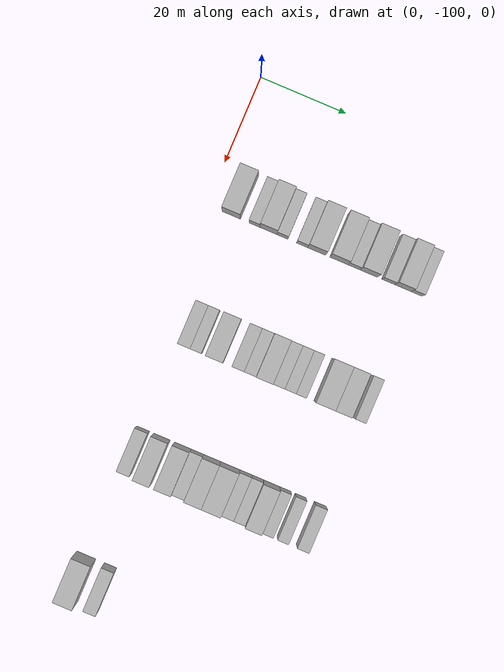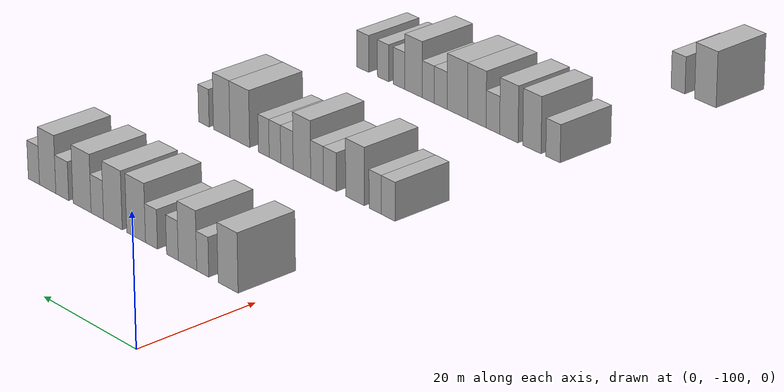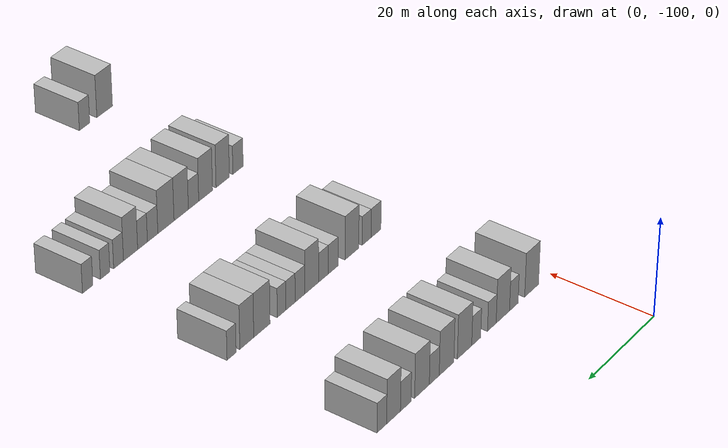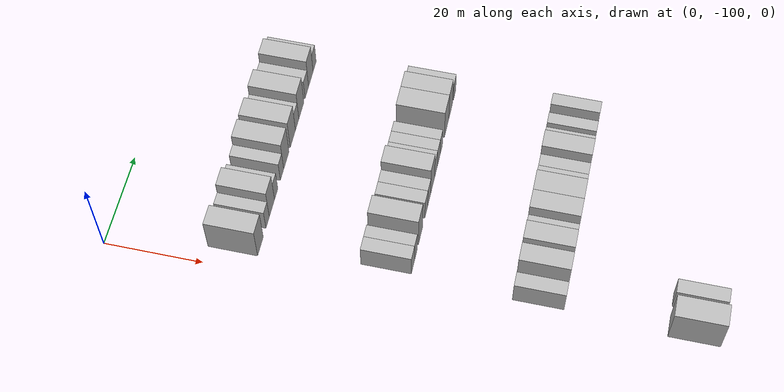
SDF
<sdf version="1.6">
 <world name="default">
  <model name="building_91">
   <static>1</static>
   <pose>25.0000 -94.2348 0 0.000000 0.000000 0.000000</pose>
   <link name="link">
    <pose>0 0 4.50 0 0 0</pose>
    <collision name="collision"><geometry><box><size>10.0000 4.2460 9.0000</size></box></geometry></collision>
    <visual name="visual">
     <cast_shadows>0</cast_shadows>
     <geometry><box><size>10.0000 4.2460 9.0000</size></box></geometry>
     <material>
      <script>
       <uri>model://HANNAS_wall/materials/scripts</uri>
       <uri>model://HANNAS_wall/materials/textures</uri>
       <name>vrc/HANNAS_wall</name>
      </script>
     </material>
    </visual>
   </link>
  </model>
  <model name="building_92">
   <static>1</static>
   <pose>25.0000 -88.8153 0 0.000000 0.000000 0.000000</pose>
   <link name="link">
    <pose>0 0 3.00 0 0 0</pose>
    <collision name="collision"><geometry><box><size>10.0000 2.5929 6.0000</size></box></geometry></collision>
    <visual name="visual">
     <cast_shadows>0</cast_shadows>
     <geometry><box><size>10.0000 2.5929 6.0000</size></box></geometry>
     <material>
      <script>
       <uri>model://HANNAS_wall/materials/scripts</uri>
       <uri>model://HANNAS_wall/materials/textures</uri>
       <name>vrc/HANNAS_wall</name>
      </script>
     </material>
    </visual>
   </link>
  </model>
  <model name="building_93">
   <static>1</static>
   <pose>25.0000 -85.5175 0 0.000000 0.000000 0.000000</pose>
   <link name="link">
    <pose>0 0 4.50 0 0 0</pose>
    <collision name="collision"><geometry><box><size>10.0000 4.0028 9.0000</size></box></geometry></collision>
    <visual name="visual">
     <cast_shadows>0</cast_shadows>
     <geometry><box><size>10.0000 4.0028 9.0000</size></box></geometry>
     <material>
      <script>
       <uri>model://HANNAS_wall/materials/scripts</uri>
       <uri>model://HANNAS_wall/materials/textures</uri>
       <name>vrc/HANNAS_wall</name>
      </script>
     </material>
    </visual>
   </link>
  </model>
  <model name="building_94">
   <static>1</static>
   <pose>25.0000 -82.2333 0 0.000000 0.000000 0.000000</pose>
   <link name="link">
    <pose>0 0 3.00 0 0 0</pose>
    <collision name="collision"><geometry><box><size>10.0000 2.5656 6.0000</size></box></geometry></collision>
    <visual name="visual">
     <cast_shadows>0</cast_shadows>
     <geometry><box><size>10.0000 2.5656 6.0000</size></box></geometry>
     <material>
      <script>
       <uri>model://HANNAS_wall/materials/scripts</uri>
       <uri>model://HANNAS_wall/materials/textures</uri>
       <name>vrc/HANNAS_wall</name>
      </script>
     </material>
    </visual>
   </link>
  </model>
  <model name="building_95">
   <static>1</static>
   <pose>25.0000 -77.6310 0 0.000000 0.000000 0.000000</pose>
   <link name="link">
    <pose>0 0 3.00 0 0 0</pose>
    <collision name="collision"><geometry><box><size>10.0000 2.6391 6.0000</size></box></geometry></collision>
    <visual name="visual">
     <cast_shadows>0</cast_shadows>
     <geometry><box><size>10.0000 2.6391 6.0000</size></box></geometry>
     <material>
      <script>
       <uri>model://HANNAS_wall/materials/scripts</uri>
       <uri>model://HANNAS_wall/materials/textures</uri>
       <name>vrc/HANNAS_wall</name>
      </script>
     </material>
    </visual>
   </link>
  </model>
  <model name="building_96">
   <static>1</static>
   <pose>25.0000 -74.2137 0 0.000000 0.000000 0.000000</pose>
   <link name="link">
    <pose>0 0 4.50 0 0 0</pose>
    <collision name="collision"><geometry><box><size>10.0000 4.1954 9.0000</size></box></geometry></collision>
    <visual name="visual">
     <cast_shadows>0</cast_shadows>
     <geometry><box><size>10.0000 4.1954 9.0000</size></box></geometry>
     <material>
      <script>
       <uri>model://HANNAS_wall/materials/scripts</uri>
       <uri>model://HANNAS_wall/materials/textures</uri>
       <name>vrc/HANNAS_wall</name>
      </script>
     </material>
    </visual>
   </link>
  </model>
  <model name="building_97">
   <static>1</static>
   <pose>25.0000 -69.0018 0 0.000000 0.000000 0.000000</pose>
   <link name="link">
    <pose>0 0 4.50 0 0 0</pose>
    <collision name="collision"><geometry><box><size>10.0000 4.2284 9.0000</size></box></geometry></collision>
    <visual name="visual">
     <cast_shadows>0</cast_shadows>
     <geometry><box><size>10.0000 4.2284 9.0000</size></box></geometry>
     <material>
      <script>
       <uri>model://HANNAS_wall/materials/scripts</uri>
       <uri>model://HANNAS_wall/materials/textures</uri>
       <name>vrc/HANNAS_wall</name>
      </script>
     </material>
    </visual>
   </link>
  </model>
  <model name="building_98">
   <static>1</static>
   <pose>25.0000 -65.4778 0 0.000000 0.000000 0.000000</pose>
   <link name="link">
    <pose>0 0 3.00 0 0 0</pose>
    <collision name="collision"><geometry><box><size>10.0000 2.8197 6.0000</size></box></geometry></collision>
    <visual name="visual">
     <cast_shadows>0</cast_shadows>
     <geometry><box><size>10.0000 2.8197 6.0000</size></box></geometry>
     <material>
      <script>
       <uri>model://HANNAS_wall/materials/scripts</uri>
       <uri>model://HANNAS_wall/materials/textures</uri>
       <name>vrc/HANNAS_wall</name>
      </script>
     </material>
    </visual>
   </link>
  </model>
  <model name="building_99">
   <static>1</static>
   <pose>25.0000 -61.9923 0 0.000000 0.000000 0.000000</pose>
   <link name="link">
    <pose>0 0 4.50 0 0 0</pose>
    <collision name="collision"><geometry><box><size>10.0000 4.1512 9.0000</size></box></geometry></collision>
    <visual name="visual">
     <cast_shadows>0</cast_shadows>
     <geometry><box><size>10.0000 4.1512 9.0000</size></box></geometry>
     <material>
      <script>
       <uri>model://HANNAS_wall/materials/scripts</uri>
       <uri>model://HANNAS_wall/materials/textures</uri>
       <name>vrc/HANNAS_wall</name>
      </script>
     </material>
    </visual>
   </link>
  </model>
  <model name="building_100">
   <static>1</static>
   <pose>25.0000 -57.4266 0 0.000000 0.000000 0.000000</pose>
   <link name="link">
    <pose>0 0 3.00 0 0 0</pose>
    <collision name="collision"><geometry><box><size>10.0000 2.9803 6.0000</size></box></geometry></collision>
    <visual name="visual">
     <cast_shadows>0</cast_shadows>
     <geometry><box><size>10.0000 2.9803 6.0000</size></box></geometry>
     <material>
      <script>
       <uri>model://HANNAS_wall/materials/scripts</uri>
       <uri>model://HANNAS_wall/materials/textures</uri>
       <name>vrc/HANNAS_wall</name>
      </script>
     </material>
    </visual>
   </link>
  </model>
  <model name="building_101">
   <static>1</static>
   <pose>25.0000 -54.0242 0 0.000000 0.000000 0.000000</pose>
   <link name="link">
    <pose>0 0 4.50 0 0 0</pose>
    <collision name="collision"><geometry><box><size>10.0000 3.8244 9.0000</size></box></geometry></collision>
    <visual name="visual">
     <cast_shadows>0</cast_shadows>
     <geometry><box><size>10.0000 3.8244 9.0000</size></box></geometry>
     <material>
      <script>
       <uri>model://HANNAS_wall/materials/scripts</uri>
       <uri>model://HANNAS_wall/materials/textures</uri>
       <name>vrc/HANNAS_wall</name>
      </script>
     </material>
    </visual>
   </link>
  </model>
  <model name="building_102">
   <static>1</static>
   <pose>25.0000 -50.7877 0 0.000000 0.000000 0.000000</pose>
   <link name="link">
    <pose>0 0 3.00 0 0 0</pose>
    <collision name="collision"><geometry><box><size>10.0000 2.6485 6.0000</size></box></geometry></collision>
    <visual name="visual">
     <cast_shadows>0</cast_shadows>
     <geometry><box><size>10.0000 2.6485 6.0000</size></box></geometry>
     <material>
      <script>
       <uri>model://HANNAS_wall/materials/scripts</uri>
       <uri>model://HANNAS_wall/materials/textures</uri>
       <name>vrc/HANNAS_wall</name>
      </script>
     </material>
    </visual>
   </link>
  </model>
  <model name="building_328">
   <static>1</static>
   <pose>55.0000 -92.4105 0 0.000000 0.000000 0.000000</pose>
   <link name="link">
    <pose>0 0 3.00 0 0 0</pose>
    <collision name="collision"><geometry><box><size>10.0000 2.9233 6.0000</size></box></geometry></collision>
    <visual name="visual">
     <cast_shadows>0</cast_shadows>
     <geometry><box><size>10.0000 2.9233 6.0000</size></box></geometry>
     <material>
      <script>
       <uri>model://HANNAS_wall/materials/scripts</uri>
       <uri>model://HANNAS_wall/materials/textures</uri>
       <name>vrc/HANNAS_wall</name>
      </script>
     </material>
    </visual>
   </link>
  </model>
  <model name="building_329">
   <static>1</static>
   <pose>55.0000 -89.6505 0 0.000000 0.000000 0.000000</pose>
   <link name="link">
    <pose>0 0 3.00 0 0 0</pose>
    <collision name="collision"><geometry><box><size>10.0000 2.5967 6.0000</size></box></geometry></collision>
    <visual name="visual">
     <cast_shadows>0</cast_shadows>
     <geometry><box><size>10.0000 2.5967 6.0000</size></box></geometry>
     <material>
      <script>
       <uri>model://HANNAS_wall/materials/scripts</uri>
       <uri>model://HANNAS_wall/materials/textures</uri>
       <name>vrc/HANNAS_wall</name>
      </script>
     </material>
    </visual>
   </link>
  </model>
  <model name="building_330">
   <static>1</static>
   <pose>55.0000 -85.3474 0 0.000000 0.000000 0.000000</pose>
   <link name="link">
    <pose>0 0 4.50 0 0 0</pose>
    <collision name="collision"><geometry><box><size>10.0000 4.0094 9.0000</size></box></geometry></collision>
    <visual name="visual">
     <cast_shadows>0</cast_shadows>
     <geometry><box><size>10.0000 4.0094 9.0000</size></box></geometry>
     <material>
      <script>
       <uri>model://HANNAS_wall/materials/scripts</uri>
       <uri>model://HANNAS_wall/materials/textures</uri>
       <name>vrc/HANNAS_wall</name>
      </script>
     </material>
    </visual>
   </link>
  </model>
  <model name="building_331">
   <static>1</static>
   <pose>55.0000 -79.9181 0 0.000000 0.000000 0.000000</pose>
   <link name="link">
    <pose>0 0 3.00 0 0 0</pose>
    <collision name="collision"><geometry><box><size>10.0000 2.8491 6.0000</size></box></geometry></collision>
    <visual name="visual">
     <cast_shadows>0</cast_shadows>
     <geometry><box><size>10.0000 2.8491 6.0000</size></box></geometry>
     <material>
      <script>
       <uri>model://HANNAS_wall/materials/scripts</uri>
       <uri>model://HANNAS_wall/materials/textures</uri>
       <name>vrc/HANNAS_wall</name>
      </script>
     </material>
    </visual>
   </link>
  </model>
  <model name="building_332">
   <static>1</static>
   <pose>55.0000 -77.1131 0 0.000000 0.000000 0.000000</pose>
   <link name="link">
    <pose>0 0 3.00 0 0 0</pose>
    <collision name="collision"><geometry><box><size>10.0000 2.7609 6.0000</size></box></geometry></collision>
    <visual name="visual">
     <cast_shadows>0</cast_shadows>
     <geometry><box><size>10.0000 2.7609 6.0000</size></box></geometry>
     <material>
      <script>
       <uri>model://HANNAS_wall/materials/scripts</uri>
       <uri>model://HANNAS_wall/materials/textures</uri>
       <name>vrc/HANNAS_wall</name>
      </script>
     </material>
    </visual>
   </link>
  </model>
  <model name="building_333">
   <static>1</static>
   <pose>55.0000 -73.8008 0 0.000000 0.000000 0.000000</pose>
   <link name="link">
    <pose>0 0 4.50 0 0 0</pose>
    <collision name="collision"><geometry><box><size>10.0000 3.8637 9.0000</size></box></geometry></collision>
    <visual name="visual">
     <cast_shadows>0</cast_shadows>
     <geometry><box><size>10.0000 3.8637 9.0000</size></box></geometry>
     <material>
      <script>
       <uri>model://HANNAS_wall/materials/scripts</uri>
       <uri>model://HANNAS_wall/materials/textures</uri>
       <name>vrc/HANNAS_wall</name>
      </script>
     </material>
    </visual>
   </link>
  </model>
  <model name="building_334">
   <static>1</static>
   <pose>55.0000 -70.4928 0 0.000000 0.000000 0.000000</pose>
   <link name="link">
    <pose>0 0 3.00 0 0 0</pose>
    <collision name="collision"><geometry><box><size>10.0000 2.7524 6.0000</size></box></geometry></collision>
    <visual name="visual">
     <cast_shadows>0</cast_shadows>
     <geometry><box><size>10.0000 2.7524 6.0000</size></box></geometry>
     <material>
      <script>
       <uri>model://HANNAS_wall/materials/scripts</uri>
       <uri>model://HANNAS_wall/materials/textures</uri>
       <name>vrc/HANNAS_wall</name>
      </script>
     </material>
    </visual>
   </link>
  </model>
  <model name="building_335">
   <static>1</static>
   <pose>55.0000 -67.8206 0 0.000000 0.000000 0.000000</pose>
   <link name="link">
    <pose>0 0 3.00 0 0 0</pose>
    <collision name="collision"><geometry><box><size>10.0000 2.5920 6.0000</size></box></geometry></collision>
    <visual name="visual">
     <cast_shadows>0</cast_shadows>
     <geometry><box><size>10.0000 2.5920 6.0000</size></box></geometry>
     <material>
      <script>
       <uri>model://HANNAS_wall/materials/scripts</uri>
       <uri>model://HANNAS_wall/materials/textures</uri>
       <name>vrc/HANNAS_wall</name>
      </script>
     </material>
    </visual>
   </link>
  </model>
  <model name="building_336">
   <static>1</static>
   <pose>55.0000 -65.3233 0 0.000000 0.000000 0.000000</pose>
   <link name="link">
    <pose>0 0 3.00 0 0 0</pose>
    <collision name="collision"><geometry><box><size>10.0000 2.4025 6.0000</size></box></geometry></collision>
    <visual name="visual">
     <cast_shadows>0</cast_shadows>
     <geometry><box><size>10.0000 2.4025 6.0000</size></box></geometry>
     <material>
      <script>
       <uri>model://HANNAS_wall/materials/scripts</uri>
       <uri>model://HANNAS_wall/materials/textures</uri>
       <name>vrc/HANNAS_wall</name>
      </script>
     </material>
    </visual>
   </link>
  </model>
  <model name="building_337">
   <static>1</static>
   <pose>55.0000 -59.8898 0 0.000000 0.000000 0.000000</pose>
   <link name="link">
    <pose>0 0 4.50 0 0 0</pose>
    <collision name="collision"><geometry><box><size>10.0000 4.4645 9.0000</size></box></geometry></collision>
    <visual name="visual">
     <cast_shadows>0</cast_shadows>
     <geometry><box><size>10.0000 4.4645 9.0000</size></box></geometry>
     <material>
      <script>
       <uri>model://HANNAS_wall/materials/scripts</uri>
       <uri>model://HANNAS_wall/materials/textures</uri>
       <name>vrc/HANNAS_wall</name>
      </script>
     </material>
    </visual>
   </link>
  </model>
  <model name="building_338">
   <static>1</static>
   <pose>55.0000 -55.7639 0 0.000000 0.000000 0.000000</pose>
   <link name="link">
    <pose>0 0 4.50 0 0 0</pose>
    <collision name="collision"><geometry><box><size>10.0000 3.7873 9.0000</size></box></geometry></collision>
    <visual name="visual">
     <cast_shadows>0</cast_shadows>
     <geometry><box><size>10.0000 3.7873 9.0000</size></box></geometry>
     <material>
      <script>
       <uri>model://HANNAS_wall/materials/scripts</uri>
       <uri>model://HANNAS_wall/materials/textures</uri>
       <name>vrc/HANNAS_wall</name>
      </script>
     </material>
    </visual>
   </link>
  </model>
  <model name="building_339">
   <static>1</static>
   <pose>55.0000 -51.6499 0 0.000000 0.000000 0.000000</pose>
   <link name="link">
    <pose>0 0 3.00 0 0 0</pose>
    <collision name="collision"><geometry><box><size>10.0000 2.4407 6.0000</size></box></geometry></collision>
    <visual name="visual">
     <cast_shadows>0</cast_shadows>
     <geometry><box><size>10.0000 2.4407 6.0000</size></box></geometry>
     <material>
      <script>
       <uri>model://HANNAS_wall/materials/scripts</uri>
       <uri>model://HANNAS_wall/materials/textures</uri>
       <name>vrc/HANNAS_wall</name>
      </script>
     </material>
    </visual>
   </link>
  </model>
  <model name="building_535">
   <static>1</static>
   <pose>85.0000 -93.7131 0 0.000000 0.000000 0.000000</pose>
   <link name="link">
    <pose>0 0 3.00 0 0 0</pose>
    <collision name="collision"><geometry><box><size>10.0000 2.9934 6.0000</size></box></geometry></collision>
    <visual name="visual">
     <cast_shadows>0</cast_shadows>
     <geometry><box><size>10.0000 2.9934 6.0000</size></box></geometry>
     <material>
      <script>
       <uri>model://HANNAS_wall/materials/scripts</uri>
       <uri>model://HANNAS_wall/materials/textures</uri>
       <name>vrc/HANNAS_wall</name>
      </script>
     </material>
    </visual>
   </link>
  </model>
  <model name="building_536">
   <static>1</static>
   <pose>85.0000 -89.2930 0 0.000000 0.000000 0.000000</pose>
   <link name="link">
    <pose>0 0 4.50 0 0 0</pose>
    <collision name="collision"><geometry><box><size>10.0000 3.8470 9.0000</size></box></geometry></collision>
    <visual name="visual">
     <cast_shadows>0</cast_shadows>
     <geometry><box><size>10.0000 3.8470 9.0000</size></box></geometry>
     <material>
      <script>
       <uri>model://HANNAS_wall/materials/scripts</uri>
       <uri>model://HANNAS_wall/materials/textures</uri>
       <name>vrc/HANNAS_wall</name>
      </script>
     </material>
    </visual>
   </link>
  </model>
  <model name="building_537">
   <static>1</static>
   <pose>85.0000 -84.4106 0 0.000000 0.000000 0.000000</pose>
   <link name="link">
    <pose>0 0 4.50 0 0 0</pose>
    <collision name="collision"><geometry><box><size>10.0000 3.9178 9.0000</size></box></geometry></collision>
    <visual name="visual">
     <cast_shadows>0</cast_shadows>
     <geometry><box><size>10.0000 3.9178 9.0000</size></box></geometry>
     <material>
      <script>
       <uri>model://HANNAS_wall/materials/scripts</uri>
       <uri>model://HANNAS_wall/materials/textures</uri>
       <name>vrc/HANNAS_wall</name>
      </script>
     </material>
    </visual>
   </link>
  </model>
  <model name="building_538">
   <static>1</static>
   <pose>85.0000 -80.9941 0 0.000000 0.000000 0.000000</pose>
   <link name="link">
    <pose>0 0 3.00 0 0 0</pose>
    <collision name="collision"><geometry><box><size>10.0000 2.9153 6.0000</size></box></geometry></collision>
    <visual name="visual">
     <cast_shadows>0</cast_shadows>
     <geometry><box><size>10.0000 2.9153 6.0000</size></box></geometry>
     <material>
      <script>
       <uri>model://HANNAS_wall/materials/scripts</uri>
       <uri>model://HANNAS_wall/materials/textures</uri>
       <name>vrc/HANNAS_wall</name>
      </script>
     </material>
    </visual>
   </link>
  </model>
  <model name="building_539">
   <static>1</static>
   <pose>85.0000 -77.5295 0 0.000000 0.000000 0.000000</pose>
   <link name="link">
    <pose>0 0 4.50 0 0 0</pose>
    <collision name="collision"><geometry><box><size>10.0000 4.0139 9.0000</size></box></geometry></collision>
    <visual name="visual">
     <cast_shadows>0</cast_shadows>
     <geometry><box><size>10.0000 4.0139 9.0000</size></box></geometry>
     <material>
      <script>
       <uri>model://HANNAS_wall/materials/scripts</uri>
       <uri>model://HANNAS_wall/materials/textures</uri>
       <name>vrc/HANNAS_wall</name>
      </script>
     </material>
    </visual>
   </link>
  </model>
  <model name="building_540">
   <static>1</static>
   <pose>85.0000 -73.2819 0 0.000000 0.000000 0.000000</pose>
   <link name="link">
    <pose>0 0 4.50 0 0 0</pose>
    <collision name="collision"><geometry><box><size>10.0000 4.4813 9.0000</size></box></geometry></collision>
    <visual name="visual">
     <cast_shadows>0</cast_shadows>
     <geometry><box><size>10.0000 4.4813 9.0000</size></box></geometry>
     <material>
      <script>
       <uri>model://HANNAS_wall/materials/scripts</uri>
       <uri>model://HANNAS_wall/materials/textures</uri>
       <name>vrc/HANNAS_wall</name>
      </script>
     </material>
    </visual>
   </link>
  </model>
  <model name="building_541">
   <static>1</static>
   <pose>85.0000 -69.6082 0 0.000000 0.000000 0.000000</pose>
   <link name="link">
    <pose>0 0 3.00 0 0 0</pose>
    <collision name="collision"><geometry><box><size>10.0000 2.8660 6.0000</size></box></geometry></collision>
    <visual name="visual">
     <cast_shadows>0</cast_shadows>
     <geometry><box><size>10.0000 2.8660 6.0000</size></box></geometry>
     <material>
      <script>
       <uri>model://HANNAS_wall/materials/scripts</uri>
       <uri>model://HANNAS_wall/materials/textures</uri>
       <name>vrc/HANNAS_wall</name>
      </script>
     </material>
    </visual>
   </link>
  </model>
  <model name="building_542">
   <static>1</static>
   <pose>85.0000 -66.8449 0 0.000000 0.000000 0.000000</pose>
   <link name="link">
    <pose>0 0 3.00 0 0 0</pose>
    <collision name="collision"><geometry><box><size>10.0000 2.6606 6.0000</size></box></geometry></collision>
    <visual name="visual">
     <cast_shadows>0</cast_shadows>
     <geometry><box><size>10.0000 2.6606 6.0000</size></box></geometry>
     <material>
      <script>
       <uri>model://HANNAS_wall/materials/scripts</uri>
       <uri>model://HANNAS_wall/materials/textures</uri>
       <name>vrc/HANNAS_wall</name>
      </script>
     </material>
    </visual>
   </link>
  </model>
  <model name="building_543">
   <static>1</static>
   <pose>85.0000 -63.5952 0 0.000000 0.000000 0.000000</pose>
   <link name="link">
    <pose>0 0 4.50 0 0 0</pose>
    <collision name="collision"><geometry><box><size>10.0000 3.8387 9.0000</size></box></geometry></collision>
    <visual name="visual">
     <cast_shadows>0</cast_shadows>
     <geometry><box><size>10.0000 3.8387 9.0000</size></box></geometry>
     <material>
      <script>
       <uri>model://HANNAS_wall/materials/scripts</uri>
       <uri>model://HANNAS_wall/materials/textures</uri>
       <name>vrc/HANNAS_wall</name>
      </script>
     </material>
    </visual>
   </link>
  </model>
  <model name="building_544">
   <static>1</static>
   <pose>85.0000 -60.3531 0 0.000000 0.000000 0.000000</pose>
   <link name="link">
    <pose>0 0 3.00 0 0 0</pose>
    <collision name="collision"><geometry><box><size>10.0000 2.6456 6.0000</size></box></geometry></collision>
    <visual name="visual">
     <cast_shadows>0</cast_shadows>
     <geometry><box><size>10.0000 2.6456 6.0000</size></box></geometry>
     <material>
      <script>
       <uri>model://HANNAS_wall/materials/scripts</uri>
       <uri>model://HANNAS_wall/materials/textures</uri>
       <name>vrc/HANNAS_wall</name>
      </script>
     </material>
    </visual>
   </link>
  </model>
  <model name="building_545">
   <static>1</static>
   <pose>85.0000 -56.7680 0 0.000000 0.000000 0.000000</pose>
   <link name="link">
    <pose>0 0 3.00 0 0 0</pose>
    <collision name="collision"><geometry><box><size>10.0000 2.5245 6.0000</size></box></geometry></collision>
    <visual name="visual">
     <cast_shadows>0</cast_shadows>
     <geometry><box><size>10.0000 2.5245 6.0000</size></box></geometry>
     <material>
      <script>
       <uri>model://HANNAS_wall/materials/scripts</uri>
       <uri>model://HANNAS_wall/materials/textures</uri>
       <name>vrc/HANNAS_wall</name>
      </script>
     </material>
    </visual>
   </link>
  </model>
  <model name="building_546">
   <static>1</static>
   <pose>85.0000 -52.1388 0 0.000000 0.000000 0.000000</pose>
   <link name="link">
    <pose>0 0 3.00 0 0 0</pose>
    <collision name="collision"><geometry><box><size>10.0000 2.7340 6.0000</size></box></geometry></collision>
    <visual name="visual">
     <cast_shadows>0</cast_shadows>
     <geometry><box><size>10.0000 2.7340 6.0000</size></box></geometry>
     <material>
      <script>
       <uri>model://HANNAS_wall/materials/scripts</uri>
       <uri>model://HANNAS_wall/materials/textures</uri>
       <name>vrc/HANNAS_wall</name>
      </script>
     </material>
    </visual>
   </link>
  </model>
  <model name="building_758">
   <static>1</static>
   <pose>115.0000 -94.3783 0 0.000000 0.000000 0.000000</pose>
   <link name="link">
    <pose>0 0 4.50 0 0 0</pose>
    <collision name="collision"><geometry><box><size>10.0000 4.4658 9.0000</size></box></geometry></collision>
    <visual name="visual">
     <cast_shadows>0</cast_shadows>
     <geometry><box><size>10.0000 4.4658 9.0000</size></box></geometry>
     <material>
      <script>
       <uri>model://HANNAS_wall/materials/scripts</uri>
       <uri>model://HANNAS_wall/materials/textures</uri>
       <name>vrc/HANNAS_wall</name>
      </script>
     </material>
    </visual>
   </link>
  </model>
  <model name="building_759">
   <static>1</static>
   <pose>115.0000 -88.6832 0 0.000000 0.000000 0.000000</pose>
   <link name="link">
    <pose>0 0 3.00 0 0 0</pose>
    <collision name="collision"><geometry><box><size>10.0000 2.9243 6.0000</size></box></geometry></collision>
    <visual name="visual">
     <cast_shadows>0</cast_shadows>
     <geometry><box><size>10.0000 2.9243 6.0000</size></box></geometry>
     <material>
      <script>
       <uri>model://HANNAS_wall/materials/scripts</uri>
       <uri>model://HANNAS_wall/materials/textures</uri>
       <name>vrc/HANNAS_wall</name>
      </script>
     </material>
    </visual>
   </link>
  </model>
 </world>
</sdf>
